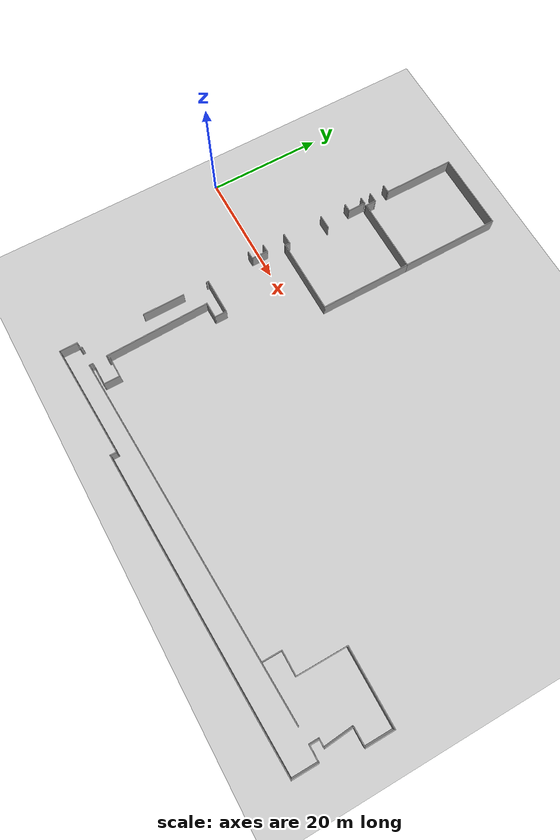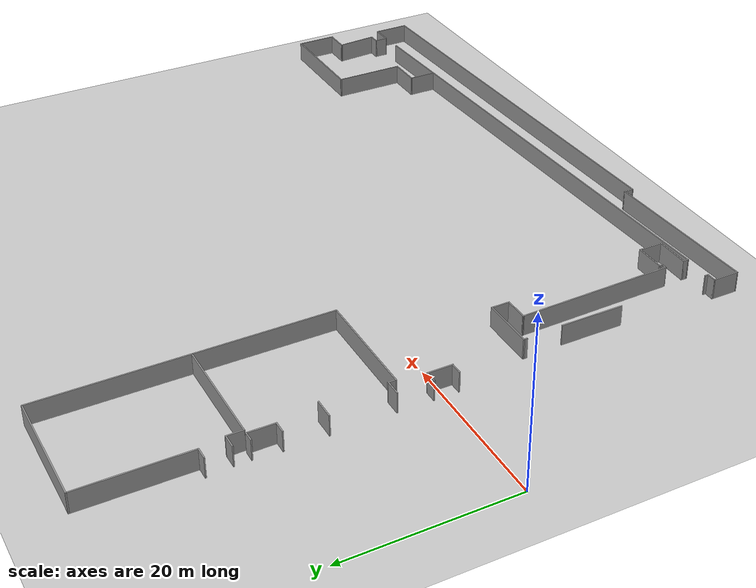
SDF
<sdf version="1.7">
 <world name="default">
  <model name="ground_plane">
   <static>1</static>
   <link name="link">
    <collision name="collision">
     <geometry><plane><normal>0 0 1</normal><size>100 100</size></plane></geometry>
     <surface>
      <contact><collide_bitmask>65535</collide_bitmask></contact>
      <friction><ode><mu>100</mu><mu2>50</mu2></ode></friction>
     </surface>
    </collision>
    <visual name="visual">
     <cast_shadows>0</cast_shadows>
     <geometry><plane><normal>0 0 1</normal><size>100 100</size></plane></geometry>
     <material>
      <script><uri>file://media/materials/scripts/gazebo.material</uri><name>Gazebo/Grey</name></script>
     </material>
    </visual>
   </link>
  </model>
  <model name="Lab">
   <pose>43.6591 0.026965 -0.000316 0 -1.4e-05 -1.57</pose>
   <link name="Wall_113">
    <collision name="Wall_113_Collision">
     <geometry><box><size>0.5 0.15 2.5</size></box></geometry>
     <pose>0 0 1.25 0 -0 0</pose>
    </collision>
    <visual name="Wall_113_Visual">
     <pose>0 0 1.25 0 -0 0</pose>
     <geometry><box><size>0.5 0.15 2.5</size></box></geometry>
     <material>
      <script><uri>file://media/materials/scripts/gazebo.material</uri><name>Gazebo/Grey</name></script>
      <ambient>1 1 1 1</ambient>
     </material>
     <meta><layer>0</layer></meta>
    </visual>
    <pose>33.9062 -25.9051 0 0 -0 0</pose>
    <inertial>
     <inertia><ixx>1</ixx><ixy>0</ixy><ixz>0</ixz><iyy>1</iyy><iyz>0</iyz><izz>1</izz></inertia>
     <mass>1</mass>
    </inertial>
   </link>
   <link name="Wall_114">
    <collision name="Wall_114_Collision">
     <geometry><box><size>1.25 0.15 2.5</size></box></geometry>
     <pose>0 0 1.25 0 -0 0</pose>
    </collision>
    <visual name="Wall_114_Visual">
     <pose>0 0 1.25 0 -0 0</pose>
     <geometry><box><size>1.25 0.15 2.5</size></box></geometry>
     <material>
      <script><uri>file://media/materials/scripts/gazebo.material</uri><name>Gazebo/Grey</name></script>
      <ambient>1 1 1 1</ambient>
     </material>
     <meta><layer>0</layer></meta>
    </visual>
    <pose>34.0812 -26.4551 0 0 -0 -1.5708</pose>
    <inertial>
     <inertia><ixx>1</ixx><ixy>0</ixy><ixz>0</ixz><iyy>1</iyy><iyz>0</iyz><izz>1</izz></inertia>
     <mass>1</mass>
    </inertial>
   </link>
   <link name="Wall_115">
    <collision name="Wall_115_Collision">
     <geometry><box><size>3.25 0.15 2.5</size></box></geometry>
     <pose>0 0 1.25 0 -0 0</pose>
    </collision>
    <visual name="Wall_115_Visual">
     <pose>0 0 1.25 0 -0 0</pose>
     <geometry><box><size>3.25 0.15 2.5</size></box></geometry>
     <material>
      <script><uri>file://media/materials/scripts/gazebo.material</uri><name>Gazebo/Grey</name></script>
      <ambient>1 1 1 1</ambient>
     </material>
     <meta><layer>0</layer></meta>
    </visual>
    <pose>35.6312 -27.0051 0 0 -0 0</pose>
    <inertial>
     <inertia><ixx>1</ixx><ixy>0</ixy><ixz>0</ixz><iyy>1</iyy><iyz>0</iyz><izz>1</izz></inertia>
     <mass>1</mass>
    </inertial>
   </link>
   <link name="Wall_117">
    <collision name="Wall_117_Collision">
     <geometry><box><size>3 0.15 2.5</size></box></geometry>
     <pose>0 0 1.25 0 -0 0</pose>
    </collision>
    <visual name="Wall_117_Visual">
     <pose>0 0 1.25 0 -0 0</pose>
     <geometry><box><size>3 0.15 2.5</size></box></geometry>
     <material>
      <script><uri>file://media/materials/scripts/gazebo.material</uri><name>Gazebo/Grey</name></script>
      <ambient>1 1 1 1</ambient>
     </material>
     <meta><layer>0</layer></meta>
    </visual>
    <pose>31.9611 -18.3743 0 0 -0 0</pose>
    <inertial>
     <inertia><ixx>1</ixx><ixy>0</ixy><ixz>0</ixz><iyy>1</iyy><iyz>0</iyz><izz>1</izz></inertia>
     <mass>1</mass>
    </inertial>
   </link>
   <link name="Wall_118">
    <collision name="Wall_118_Collision">
     <geometry><box><size>4.25 0.15 2.5</size></box></geometry>
     <pose>0 0 1.25 0 -0 0</pose>
    </collision>
    <visual name="Wall_118_Visual">
     <pose>0 0 1.25 0 -0 0</pose>
     <geometry><box><size>4.25 0.15 2.5</size></box></geometry>
     <material>
      <script><uri>file://media/materials/scripts/gazebo.material</uri><name>Gazebo/Grey</name></script>
      <ambient>1 1 1 1</ambient>
     </material>
     <meta><layer>0</layer></meta>
    </visual>
    <pose>33.3861 -20.4243 0 0 -0 -1.5708</pose>
    <inertial>
     <inertia><ixx>1</ixx><ixy>0</ixy><ixz>0</ixz><iyy>1</iyy><iyz>0</iyz><izz>1</izz></inertia>
     <mass>1</mass>
    </inertial>
   </link>
   <link name="Wall_119">
    <collision name="Wall_119_Collision">
     <geometry><box><size>0.75 0.15 2.5</size></box></geometry>
     <pose>0 0 1.25 0 -0 0</pose>
    </collision>
    <visual name="Wall_119_Visual">
     <pose>0 0 1.25 0 -0 0</pose>
     <geometry><box><size>0.75 0.15 2.5</size></box></geometry>
     <material>
      <script><uri>file://media/materials/scripts/gazebo.material</uri><name>Gazebo/Grey</name></script>
      <ambient>1 1 1 1</ambient>
     </material>
     <meta><layer>0</layer></meta>
    </visual>
    <pose>33.6861 -22.4743 0 0 -0 0</pose>
    <inertial>
     <inertia><ixx>1</ixx><ixy>0</ixy><ixz>0</ixz><iyy>1</iyy><iyz>0</iyz><izz>1</izz></inertia>
     <mass>1</mass>
    </inertial>
   </link>
   <link name="Wall_121">
    <collision name="Wall_121_Collision">
     <geometry><box><size>20.026 0.15 2.5</size></box></geometry>
     <pose>0 0 1.25 0 -0 0</pose>
    </collision>
    <visual name="Wall_121_Visual">
     <pose>0 0 1.25 0 -0 0</pose>
     <geometry><box><size>20.026 0.15 2.5</size></box></geometry>
     <material>
      <script><uri>file://media/materials/scripts/gazebo.material</uri><name>Gazebo/Grey</name></script>
      <ambient>1 1 1 1</ambient>
     </material>
     <meta><layer>0</layer></meta>
    </visual>
    <pose>36.7959 -17.0746 0 0 -0 1.60957</pose>
    <inertial>
     <inertia><ixx>1</ixx><ixy>0</ixy><ixz>0</ixz><iyy>1</iyy><iyz>0</iyz><izz>1</izz></inertia>
     <mass>1</mass>
    </inertial>
   </link>
   <link name="Wall_123">
    <collision name="Wall_123_Collision">
     <geometry><box><size>1.25 0.15 2.5</size></box></geometry>
     <pose>0 0 1.25 0 -0 0</pose>
    </collision>
    <visual name="Wall_123_Visual">
     <pose>0 0 1.25 0 -0 0</pose>
     <geometry><box><size>1.25 0.15 2.5</size></box></geometry>
     <material>
      <script><uri>file://media/materials/scripts/gazebo.material</uri><name>Gazebo/Grey</name></script>
      <ambient>1 1 1 1</ambient>
     </material>
     <meta><layer>0</layer></meta>
    </visual>
    <pose>36.9607 -7.14408 0 0 -0 0</pose>
    <inertial>
     <inertia><ixx>1</ixx><ixy>0</ixy><ixz>0</ixz><iyy>1</iyy><iyz>0</iyz><izz>1</izz></inertia>
     <mass>1</mass>
    </inertial>
   </link>
   <link name="Wall_125">
    <collision name="Wall_125_Collision">
     <geometry><box><size>63.8964 0.15 2.5</size></box></geometry>
     <pose>0 0 1.25 0 -0 0</pose>
    </collision>
    <visual name="Wall_125_Visual">
     <pose>0 0 1.25 0 -0 0</pose>
     <geometry><box><size>63.8964 0.15 2.5</size></box></geometry>
     <material>
      <script><uri>file://media/materials/scripts/gazebo.material</uri><name>Gazebo/Grey</name></script>
      <ambient>1 1 1 1</ambient>
     </material>
     <meta><layer>0</layer></meta>
    </visual>
    <pose>32.6938 9.3727 0 0 -0 1.61135</pose>
    <inertial>
     <inertia><ixx>1</ixx><ixy>0</ixy><ixz>0</ixz><iyy>1</iyy><iyz>0</iyz><izz>1</izz></inertia>
     <mass>1</mass>
    </inertial>
   </link>
   <link name="Wall_127">
    <collision name="Wall_127_Collision">
     <geometry><box><size>3.5 0.15 2.5</size></box></geometry>
     <pose>0 0 1.25 0 -0 0</pose>
    </collision>
    <visual name="Wall_127_Visual">
     <pose>0 0 1.25 0 -0 0</pose>
     <geometry><box><size>3.5 0.15 2.5</size></box></geometry>
     <material>
      <script><uri>file://media/materials/scripts/gazebo.material</uri><name>Gazebo/Grey</name></script>
      <ambient>1 1 1 1</ambient>
     </material>
     <meta><layer>0</layer></meta>
    </visual>
    <pose>30.0989 31.1914 0 0 -0 3.14159</pose>
    <inertial>
     <inertia><ixx>1</ixx><ixy>0</ixy><ixz>0</ixz><iyy>1</iyy><iyz>0</iyz><izz>1</izz></inertia>
     <mass>1</mass>
    </inertial>
   </link>
   <link name="Wall_128">
    <collision name="Wall_128_Collision">
     <geometry><box><size>4.25 0.15 2.5</size></box></geometry>
     <pose>0 0 1.25 0 -0 0</pose>
    </collision>
    <visual name="Wall_128_Visual">
     <pose>0 0 1.25 0 -0 0</pose>
     <geometry><box><size>4.25 0.15 2.5</size></box></geometry>
     <material>
      <script><uri>file://media/materials/scripts/gazebo.material</uri><name>Gazebo/Grey</name></script>
      <ambient>1 1 1 1</ambient>
     </material>
     <meta><layer>0</layer></meta>
    </visual>
    <pose>28.4239 33.2414 0 0 -0 1.5708</pose>
    <inertial>
     <inertia><ixx>1</ixx><ixy>0</ixy><ixz>0</ixz><iyy>1</iyy><iyz>0</iyz><izz>1</izz></inertia>
     <mass>1</mass>
    </inertial>
   </link>
   <link name="Wall_129">
    <collision name="Wall_129_Collision">
     <geometry><box><size>8.75 0.15 2.5</size></box></geometry>
     <pose>0 0 1.25 0 -0 0</pose>
    </collision>
    <visual name="Wall_129_Visual">
     <pose>0 0 1.25 0 -0 0</pose>
     <geometry><box><size>8.75 0.15 2.5</size></box></geometry>
     <material>
      <script><uri>file://media/materials/scripts/gazebo.material</uri><name>Gazebo/Grey</name></script>
      <ambient>1 1 1 1</ambient>
     </material>
     <meta><layer>0</layer></meta>
    </visual>
    <pose>24.1239 35.2914 0 0 -0 3.14159</pose>
    <inertial>
     <inertia><ixx>1</ixx><ixy>0</ixy><ixz>0</ixz><iyy>1</iyy><iyz>0</iyz><izz>1</izz></inertia>
     <mass>1</mass>
    </inertial>
   </link>
   <link name="Wall_131">
    <collision name="Wall_131_Collision">
     <geometry><box><size>13 0.15 2.5</size></box></geometry>
     <pose>0 0 1.25 0 -0 0</pose>
    </collision>
    <visual name="Wall_131_Visual">
     <pose>0 0 1.25 0 -0 0</pose>
     <geometry><box><size>13 0.15 2.5</size></box></geometry>
     <material>
      <script><uri>file://media/materials/scripts/gazebo.material</uri><name>Gazebo/Grey</name></script>
      <ambient>1 1 1 1</ambient>
     </material>
     <meta><layer>0</layer></meta>
    </visual>
    <pose>19.8239 41.7164 0 0 -0 1.5708</pose>
    <inertial>
     <inertia><ixx>1</ixx><ixy>0</ixy><ixz>0</ixz><iyy>1</iyy><iyz>0</iyz><izz>1</izz></inertia>
     <mass>1</mass>
    </inertial>
   </link>
   <link name="Wall_132">
    <collision name="Wall_132_Collision">
     <geometry><box><size>5 0.15 2.5</size></box></geometry>
     <pose>0 0 1.25 0 -0 0</pose>
    </collision>
    <visual name="Wall_132_Visual">
     <pose>0 0 1.25 0 -0 0</pose>
     <geometry><box><size>5 0.15 2.5</size></box></geometry>
     <material>
      <script><uri>file://media/materials/scripts/gazebo.material</uri><name>Gazebo/Grey</name></script>
      <ambient>1 1 1 1</ambient>
     </material>
     <meta><layer>0</layer></meta>
    </visual>
    <pose>22.2489 48.1414 0 0 -0 0</pose>
    <inertial>
     <inertia><ixx>1</ixx><ixy>0</ixy><ixz>0</ixz><iyy>1</iyy><iyz>0</iyz><izz>1</izz></inertia>
     <mass>1</mass>
    </inertial>
   </link>
   <link name="Wall_133">
    <collision name="Wall_133_Collision">
     <geometry><box><size>3.25 0.15 2.5</size></box></geometry>
     <pose>0 0 1.25 0 -0 0</pose>
    </collision>
    <visual name="Wall_133_Visual">
     <pose>0 0 1.25 0 -0 0</pose>
     <geometry><box><size>3.25 0.15 2.5</size></box></geometry>
     <material>
      <script><uri>file://media/materials/scripts/gazebo.material</uri><name>Gazebo/Grey</name></script>
      <ambient>1 1 1 1</ambient>
     </material>
     <meta><layer>0</layer></meta>
    </visual>
    <pose>24.6739 46.5914 0 0 -0 -1.5708</pose>
    <inertial>
     <inertia><ixx>1</ixx><ixy>0</ixy><ixz>0</ixz><iyy>1</iyy><iyz>0</iyz><izz>1</izz></inertia>
     <mass>1</mass>
    </inertial>
   </link>
   <link name="Wall_134">
    <collision name="Wall_134_Collision">
     <geometry><box><size>5.13657 0.15 2.5</size></box></geometry>
     <pose>0 0 1.25 0 -0 0</pose>
    </collision>
    <visual name="Wall_134_Visual">
     <pose>0 0 1.25 0 -0 0</pose>
     <geometry><box><size>5.13657 0.15 2.5</size></box></geometry>
     <material>
      <script><uri>file://media/materials/scripts/gazebo.material</uri><name>Gazebo/Grey</name></script>
      <ambient>1 1 1 1</ambient>
     </material>
     <meta><layer>0</layer></meta>
    </visual>
    <pose>27.1599 45.232 0 0 -0 0.076501</pose>
    <inertial>
     <inertia><ixx>1</ixx><ixy>0</ixy><ixz>0</ixz><iyy>1</iyy><iyz>0</iyz><izz>1</izz></inertia>
     <mass>1</mass>
    </inertial>
   </link>
   <link name="Wall_135">
    <collision name="Wall_135_Collision">
     <geometry><box><size>1.5 0.15 2.5</size></box></geometry>
     <pose>0 0 1.25 0 -0 0</pose>
    </collision>
    <visual name="Wall_135_Visual">
     <pose>0 0 1.25 0 -0 0</pose>
     <geometry><box><size>1.5 0.15 2.5</size></box></geometry>
     <material>
      <script><uri>file://media/materials/scripts/gazebo.material</uri><name>Gazebo/Grey</name></script>
      <ambient>1 1 1 1</ambient>
     </material>
     <meta><layer>0</layer></meta>
    </visual>
    <pose>29.6458 44.7475 0 0 -0 -1.5708</pose>
    <inertial>
     <inertia><ixx>1</ixx><ixy>0</ixy><ixz>0</ixz><iyy>1</iyy><iyz>0</iyz><izz>1</izz></inertia>
     <mass>1</mass>
    </inertial>
   </link>
   <link name="Wall_136">
    <collision name="Wall_136_Collision">
     <geometry><box><size>1.75 0.15 2.5</size></box></geometry>
     <pose>0 0 1.25 0 -0 0</pose>
    </collision>
    <visual name="Wall_136_Visual">
     <pose>0 0 1.25 0 -0 0</pose>
     <geometry><box><size>1.75 0.15 2.5</size></box></geometry>
     <material>
      <script><uri>file://media/materials/scripts/gazebo.material</uri><name>Gazebo/Grey</name></script>
      <ambient>1 1 1 1</ambient>
     </material>
     <meta><layer>0</layer></meta>
    </visual>
    <pose>30.4458 44.0725 0 0 -0 0</pose>
    <inertial>
     <inertia><ixx>1</ixx><ixy>0</ixy><ixz>0</ixz><iyy>1</iyy><iyz>0</iyz><izz>1</izz></inertia>
     <mass>1</mass>
    </inertial>
   </link>
   <link name="Wall_137">
    <collision name="Wall_137_Collision">
     <geometry><box><size>2.75 0.15 2.5</size></box></geometry>
     <pose>0 0 1.25 0 -0 0</pose>
    </collision>
    <visual name="Wall_137_Visual">
     <pose>0 0 1.25 0 -0 0</pose>
     <geometry><box><size>2.75 0.15 2.5</size></box></geometry>
     <material>
      <script><uri>file://media/materials/scripts/gazebo.material</uri><name>Gazebo/Grey</name></script>
      <ambient>1 1 1 1</ambient>
     </material>
     <meta><layer>0</layer></meta>
    </visual>
    <pose>31.2458 45.3725 0 0 -0 1.5708</pose>
    <inertial>
     <inertia><ixx>1</ixx><ixy>0</ixy><ixz>0</ixz><iyy>1</iyy><iyz>0</iyz><izz>1</izz></inertia>
     <mass>1</mass>
    </inertial>
   </link>
   <link name="Wall_138">
    <collision name="Wall_138_Collision">
     <geometry><box><size>4.5 0.15 2.5</size></box></geometry>
     <pose>0 0 1.25 0 -0 0</pose>
    </collision>
    <visual name="Wall_138_Visual">
     <pose>0 0 1.25 0 -0 0</pose>
     <geometry><box><size>4.5 0.15 2.5</size></box></geometry>
     <material>
      <script><uri>file://media/materials/scripts/gazebo.material</uri><name>Gazebo/Grey</name></script>
      <ambient>1 1 1 1</ambient>
     </material>
     <meta><layer>0</layer></meta>
    </visual>
    <pose>33.4208 46.6725 0 0 -0 0</pose>
    <inertial>
     <inertia><ixx>1</ixx><ixy>0</ixy><ixz>0</ixz><iyy>1</iyy><iyz>0</iyz><izz>1</izz></inertia>
     <mass>1</mass>
    </inertial>
   </link>
   <link name="Wall_140">
    <collision name="Wall_140_Collision">
     <geometry><box><size>53.9783 0.15 2.5</size></box></geometry>
     <pose>0 0 1.25 0 -0 0</pose>
    </collision>
    <visual name="Wall_140_Visual">
     <pose>0 0 1.25 0 -0 0</pose>
     <geometry><box><size>53.9783 0.15 2.5</size></box></geometry>
     <material>
      <script><uri>file://media/materials/scripts/gazebo.material</uri><name>Gazebo/Grey</name></script>
      <ambient>1 1 1 1</ambient>
     </material>
     <meta><layer>0</layer></meta>
    </visual>
    <pose>36.5596 19.7533 0 0 -0 1.60614</pose>
    <inertial>
     <inertia><ixx>1</ixx><ixy>0</ixy><ixz>0</ixz><iyy>1</iyy><iyz>0</iyz><izz>1</izz></inertia>
     <mass>1</mass>
    </inertial>
   </link>
   <link name="Wall_26">
    <collision name="Wall_26_Collision">
     <geometry><box><size>1.5 0.15 2.5</size></box></geometry>
     <pose>0 0 1.25 0 -0 0</pose>
    </collision>
    <visual name="Wall_26_Visual">
     <pose>0 0 1.25 0 -0 0</pose>
     <geometry><box><size>1.5 0.15 2.5</size></box></geometry>
     <material>
      <script><uri>file://media/materials/scripts/gazebo.material</uri><name>Gazebo/Grey</name></script>
      <ambient>1 1 1 1</ambient>
     </material>
     <meta><layer>0</layer></meta>
    </visual>
    <pose>-25.2163 -27.4164 0 0 -0 1.5708</pose>
    <inertial>
     <inertia><ixx>1</ixx><ixy>0</ixy><ixz>0</ixz><iyy>1</iyy><iyz>0</iyz><izz>1</izz></inertia>
     <mass>1</mass>
    </inertial>
   </link>
   <link name="Wall_28">
    <collision name="Wall_28_Collision">
     <geometry><box><size>12.75 0.15 2.5</size></box></geometry>
     <pose>0 0 1.25 0 -0 0</pose>
    </collision>
    <visual name="Wall_28_Visual">
     <pose>0 0 1.25 0 -0 0</pose>
     <geometry><box><size>12.75 0.15 2.5</size></box></geometry>
     <material>
      <script><uri>file://media/materials/scripts/gazebo.material</uri><name>Gazebo/Grey</name></script>
      <ambient>1 1 1 1</ambient>
     </material>
     <meta><layer>0</layer></meta>
    </visual>
    <pose>-31.5163 -26.7414 0 0 -0 3.14159</pose>
    <inertial>
     <inertia><ixx>1</ixx><ixy>0</ixy><ixz>0</ixz><iyy>1</iyy><iyz>0</iyz><izz>1</izz></inertia>
     <mass>1</mass>
    </inertial>
   </link>
   <link name="Wall_30">
    <collision name="Wall_30_Collision">
     <geometry><box><size>14 0.15 2.5</size></box></geometry>
     <pose>0 0 1.25 0 -0 0</pose>
    </collision>
    <visual name="Wall_30_Visual">
     <pose>0 0 1.25 0 -0 0</pose>
     <geometry><box><size>14 0.15 2.5</size></box></geometry>
     <material>
      <script><uri>file://media/materials/scripts/gazebo.material</uri><name>Gazebo/Grey</name></script>
      <ambient>1 1 1 1</ambient>
     </material>
     <meta><layer>0</layer></meta>
    </visual>
    <pose>-37.8163 -19.8164 0 0 -0 1.5708</pose>
    <inertial>
     <inertia><ixx>1</ixx><ixy>0</ixy><ixz>0</ixz><iyy>1</iyy><iyz>0</iyz><izz>1</izz></inertia>
     <mass>1</mass>
    </inertial>
   </link>
   <link name="Wall_31">
    <collision name="Wall_31_Collision">
     <geometry><box><size>17.5 0.15 2.5</size></box></geometry>
     <pose>0 0 1.25 0 -0 0</pose>
    </collision>
    <visual name="Wall_31_Visual">
     <pose>0 0 1.25 0 -0 0</pose>
     <geometry><box><size>17.5 0.15 2.5</size></box></geometry>
     <material>
      <script><uri>file://media/materials/scripts/gazebo.material</uri><name>Gazebo/Grey</name></script>
      <ambient>1 1 1 1</ambient>
     </material>
     <meta><layer>0</layer></meta>
    </visual>
    <pose>-29.1413 -12.8914 0 0 -0 0</pose>
    <inertial>
     <inertia><ixx>1</ixx><ixy>0</ixy><ixz>0</ixz><iyy>1</iyy><iyz>0</iyz><izz>1</izz></inertia>
     <mass>1</mass>
    </inertial>
   </link>
   <link name="Wall_32">
    <collision name="Wall_32_Collision">
     <geometry><box><size>13.5 0.15 2.5</size></box></geometry>
     <pose>0 0 1.25 0 -0 0</pose>
    </collision>
    <visual name="Wall_32_Visual">
     <pose>0 0 1.25 0 -0 0</pose>
     <geometry><box><size>13.5 0.15 2.5</size></box></geometry>
     <material>
      <script><uri>file://media/materials/scripts/gazebo.material</uri><name>Gazebo/Grey</name></script>
      <ambient>1 1 1 1</ambient>
     </material>
     <meta><layer>0</layer></meta>
    </visual>
    <pose>-20.4663 -19.5664 0 0 -0 -1.5708</pose>
    <inertial>
     <inertia><ixx>1</ixx><ixy>0</ixy><ixz>0</ixz><iyy>1</iyy><iyz>0</iyz><izz>1</izz></inertia>
     <mass>1</mass>
    </inertial>
   </link>
   <link name="Wall_33">
    <collision name="Wall_33_Collision">
     <geometry><box><size>2 0.15 2.5</size></box></geometry>
     <pose>0 0 1.25 0 -0 0</pose>
    </collision>
    <visual name="Wall_33_Visual">
     <pose>0 0 1.25 0 -0 0</pose>
     <geometry><box><size>2 0.15 2.5</size></box></geometry>
     <material>
      <script><uri>file://media/materials/scripts/gazebo.material</uri><name>Gazebo/Grey</name></script>
      <ambient>1 1 1 1</ambient>
     </material>
     <meta><layer>0</layer></meta>
    </visual>
    <pose>-21.3913 -26.2414 0 0 -0 3.14159</pose>
    <inertial>
     <inertia><ixx>1</ixx><ixy>0</ixy><ixz>0</ixz><iyy>1</iyy><iyz>0</iyz><izz>1</izz></inertia>
     <mass>1</mass>
    </inertial>
   </link>
   <link name="Wall_34">
    <collision name="Wall_34_Collision">
     <geometry><box><size>1.75 0.15 2.5</size></box></geometry>
     <pose>0 0 1.25 0 -0 0</pose>
    </collision>
    <visual name="Wall_34_Visual">
     <pose>0 0 1.25 0 -0 0</pose>
     <geometry><box><size>1.75 0.15 2.5</size></box></geometry>
     <material>
      <script><uri>file://media/materials/scripts/gazebo.material</uri><name>Gazebo/Grey</name></script>
      <ambient>1 1 1 1</ambient>
     </material>
     <meta><layer>0</layer></meta>
    </visual>
    <pose>-22.3163 -27.0414 0 0 -0 -1.5708</pose>
    <inertial>
     <inertia><ixx>1</ixx><ixy>0</ixy><ixz>0</ixz><iyy>1</iyy><iyz>0</iyz><izz>1</izz></inertia>
     <mass>1</mass>
    </inertial>
   </link>
   <link name="Wall_36">
    <collision name="Wall_36_Collision">
     <geometry><box><size>1.25 0.15 2.5</size></box></geometry>
     <pose>0 0 1.25 0 -0 0</pose>
    </collision>
    <visual name="Wall_36_Visual">
     <pose>0 0 1.25 0 -0 0</pose>
     <geometry><box><size>1.25 0.15 2.5</size></box></geometry>
     <material>
      <script><uri>file://media/materials/scripts/gazebo.material</uri><name>Gazebo/Grey</name></script>
      <ambient>1 1 1 1</ambient>
     </material>
     <meta><layer>0</layer></meta>
    </visual>
    <pose>-20.4663 -27.2914 0 0 -0 1.5708</pose>
    <inertial>
     <inertia><ixx>1</ixx><ixy>0</ixy><ixz>0</ixz><iyy>1</iyy><iyz>0</iyz><izz>1</izz></inertia>
     <mass>1</mass>
    </inertial>
   </link>
   <link name="Wall_37">
    <collision name="Wall_37_Collision">
     <geometry><box><size>3.25 0.15 2.5</size></box></geometry>
     <pose>0 0 1.25 0 -0 0</pose>
    </collision>
    <visual name="Wall_37_Visual">
     <pose>0 0 1.25 0 -0 0</pose>
     <geometry><box><size>3.25 0.15 2.5</size></box></geometry>
     <material>
      <script><uri>file://media/materials/scripts/gazebo.material</uri><name>Gazebo/Grey</name></script>
      <ambient>1 1 1 1</ambient>
     </material>
     <meta><layer>0</layer></meta>
    </visual>
    <pose>-18.9163 -26.7414 0 0 -0 0</pose>
    <inertial>
     <inertia><ixx>1</ixx><ixy>0</ixy><ixz>0</ixz><iyy>1</iyy><iyz>0</iyz><izz>1</izz></inertia>
     <mass>1</mass>
    </inertial>
   </link>
   <link name="Wall_38">
    <collision name="Wall_38_Collision">
     <geometry><box><size>1.5 0.15 2.5</size></box></geometry>
     <pose>0 0 1.25 0 -0 0</pose>
    </collision>
    <visual name="Wall_38_Visual">
     <pose>0 0 1.25 0 -0 0</pose>
     <geometry><box><size>1.5 0.15 2.5</size></box></geometry>
     <material>
      <script><uri>file://media/materials/scripts/gazebo.material</uri><name>Gazebo/Grey</name></script>
      <ambient>1 1 1 1</ambient>
     </material>
     <meta><layer>0</layer></meta>
    </visual>
    <pose>-17.3663 -27.4164 0 0 -0 -1.5708</pose>
    <inertial>
     <inertia><ixx>1</ixx><ixy>0</ixy><ixz>0</ixz><iyy>1</iyy><iyz>0</iyz><izz>1</izz></inertia>
     <mass>1</mass>
    </inertial>
   </link>
   <link name="Wall_41">
    <collision name="Wall_41_Collision">
     <geometry><box><size>2.5 0.15 2.5</size></box></geometry>
     <pose>0 0 1.25 0 -0 0</pose>
    </collision>
    <visual name="Wall_41_Visual">
     <pose>0 0 1.25 0 -0 0</pose>
     <geometry><box><size>2.5 0.15 2.5</size></box></geometry>
     <material>
      <script><uri>file://media/materials/scripts/gazebo.material</uri><name>Gazebo/Grey</name></script>
      <ambient>1 1 1 1</ambient>
     </material>
     <meta><layer>0</layer></meta>
    </visual>
    <pose>-12.5163 -26.9164 0 0 -0 1.5708</pose>
    <inertial>
     <inertia><ixx>1</ixx><ixy>0</ixy><ixz>0</ixz><iyy>1</iyy><iyz>0</iyz><izz>1</izz></inertia>
     <mass>1</mass>
    </inertial>
   </link>
   <link name="Wall_65">
    <collision name="Wall_65_Collision">
     <geometry><box><size>16.25 0.15 2.5</size></box></geometry>
     <pose>0 0 1.25 0 -0 0</pose>
    </collision>
    <visual name="Wall_65_Visual">
     <pose>0 0 1.25 0 -0 0</pose>
     <geometry><box><size>16.25 0.15 2.5</size></box></geometry>
     <material>
      <script><uri>file://media/materials/scripts/gazebo.material</uri><name>Gazebo/Grey</name></script>
      <ambient>1 1 1 1</ambient>
     </material>
     <meta><layer>0</layer></meta>
    </visual>
    <pose>-12.4163 -12.8914 0 0 -0 0</pose>
    <inertial>
     <inertia><ixx>1</ixx><ixy>0</ixy><ixz>0</ixz><iyy>1</iyy><iyz>0</iyz><izz>1</izz></inertia>
     <mass>1</mass>
    </inertial>
   </link>
   <link name="Wall_66">
    <collision name="Wall_66_Collision">
     <geometry><box><size>13.5 0.15 2.5</size></box></geometry>
     <pose>0 0 1.25 0 -0 0</pose>
    </collision>
    <visual name="Wall_66_Visual">
     <pose>0 0 1.25 0 -0 0</pose>
     <geometry><box><size>13.5 0.15 2.5</size></box></geometry>
     <material>
      <script><uri>file://media/materials/scripts/gazebo.material</uri><name>Gazebo/Grey</name></script>
      <ambient>1 1 1 1</ambient>
     </material>
     <meta><layer>0</layer></meta>
    </visual>
    <pose>-4.36626 -19.5664 0 0 -0 -1.5708</pose>
    <inertial>
     <inertia><ixx>1</ixx><ixy>0</ixy><ixz>0</ixz><iyy>1</iyy><iyz>0</iyz><izz>1</izz></inertia>
     <mass>1</mass>
    </inertial>
   </link>
   <link name="Wall_67">
    <collision name="Wall_67_Collision">
     <geometry><box><size>1 0.15 2.5</size></box></geometry>
     <pose>0 0 1.25 0 -0 0</pose>
    </collision>
    <visual name="Wall_67_Visual">
     <pose>0 0 1.25 0 -0 0</pose>
     <geometry><box><size>1 0.15 2.5</size></box></geometry>
     <material>
      <script><uri>file://media/materials/scripts/gazebo.material</uri><name>Gazebo/Grey</name></script>
      <ambient>1 1 1 1</ambient>
     </material>
     <meta><layer>0</layer></meta>
    </visual>
    <pose>-4.79126 -26.2414 0 0 -0 3.14159</pose>
    <inertial>
     <inertia><ixx>1</ixx><ixy>0</ixy><ixz>0</ixz><iyy>1</iyy><iyz>0</iyz><izz>1</izz></inertia>
     <mass>1</mass>
    </inertial>
   </link>
   <link name="Wall_68">
    <collision name="Wall_68_Collision">
     <geometry><box><size>2 0.15 2.5</size></box></geometry>
     <pose>0 0 1.25 0 -0 0</pose>
    </collision>
    <visual name="Wall_68_Visual">
     <pose>0 0 1.25 0 -0 0</pose>
     <geometry><box><size>2 0.15 2.5</size></box></geometry>
     <material>
      <script><uri>file://media/materials/scripts/gazebo.material</uri><name>Gazebo/Grey</name></script>
      <ambient>1 1 1 1</ambient>
     </material>
     <meta><layer>0</layer></meta>
    </visual>
    <pose>-5.21626 -27.1664 0 0 -0 -1.5708</pose>
    <inertial>
     <inertia><ixx>1</ixx><ixy>0</ixy><ixz>0</ixz><iyy>1</iyy><iyz>0</iyz><izz>1</izz></inertia>
     <mass>1</mass>
    </inertial>
   </link>
   <link name="Wall_70">
    <collision name="Wall_70_Collision">
     <geometry><box><size>1.5 0.15 2.5</size></box></geometry>
     <pose>0 0 1.25 0 -0 0</pose>
    </collision>
    <visual name="Wall_70_Visual">
     <pose>0 0 1.25 0 -0 0</pose>
     <geometry><box><size>1.5 0.15 2.5</size></box></geometry>
     <material>
      <script><uri>file://media/materials/scripts/gazebo.material</uri><name>Gazebo/Grey</name></script>
      <ambient>1 1 1 1</ambient>
     </material>
     <meta><layer>0</layer></meta>
    </visual>
    <pose>-1.11626 -27.4164 0 0 -0 1.5708</pose>
    <inertial>
     <inertia><ixx>1</ixx><ixy>0</ixy><ixz>0</ixz><iyy>1</iyy><iyz>0</iyz><izz>1</izz></inertia>
     <mass>1</mass>
    </inertial>
   </link>
   <link name="Wall_71">
    <collision name="Wall_71_Collision">
     <geometry><box><size>3 0.15 2.5</size></box></geometry>
     <pose>0 0 1.25 0 -0 0</pose>
    </collision>
    <visual name="Wall_71_Visual">
     <pose>0 0 1.25 0 -0 0</pose>
     <geometry><box><size>3 0.15 2.5</size></box></geometry>
     <material>
      <script><uri>file://media/materials/scripts/gazebo.material</uri><name>Gazebo/Grey</name></script>
      <ambient>1 1 1 1</ambient>
     </material>
     <meta><layer>0</layer></meta>
    </visual>
    <pose>0.308737 -26.7414 0 0 -0 0</pose>
    <inertial>
     <inertia><ixx>1</ixx><ixy>0</ixy><ixz>0</ixz><iyy>1</iyy><iyz>0</iyz><izz>1</izz></inertia>
     <mass>1</mass>
    </inertial>
   </link>
   <link name="Wall_72">
    <collision name="Wall_72_Collision">
     <geometry><box><size>1.5 0.15 2.5</size></box></geometry>
     <pose>0 0 1.25 0 -0 0</pose>
    </collision>
    <visual name="Wall_72_Visual">
     <pose>0 0 1.25 0 -0 0</pose>
     <geometry><box><size>1.5 0.15 2.5</size></box></geometry>
     <material>
      <script><uri>file://media/materials/scripts/gazebo.material</uri><name>Gazebo/Grey</name></script>
      <ambient>1 1 1 1</ambient>
     </material>
     <meta><layer>0</layer></meta>
    </visual>
    <pose>1.73374 -27.4164 0 0 -0 -1.5708</pose>
    <inertial>
     <inertia><ixx>1</ixx><ixy>0</ixy><ixz>0</ixz><iyy>1</iyy><iyz>0</iyz><izz>1</izz></inertia>
     <mass>1</mass>
    </inertial>
   </link>
   <link name="Wall_86">
    <collision name="Wall_86_Collision">
     <geometry><box><size>0.5 0.15 2.5</size></box></geometry>
     <pose>0 0 1.25 0 -0 0</pose>
    </collision>
    <visual name="Wall_86_Visual">
     <pose>0 0 1.25 0 -0 0</pose>
     <geometry><box><size>0.5 0.15 2.5</size></box></geometry>
     <material>
      <script><uri>file://media/materials/scripts/gazebo.material</uri><name>Gazebo/Grey</name></script>
      <ambient>1 1 1 1</ambient>
     </material>
     <meta><layer>0</layer></meta>
    </visual>
    <pose>10.4079 -26.5003 0 0 -0 3.14159</pose>
    <inertial>
     <inertia><ixx>1</ixx><ixy>0</ixy><ixz>0</ixz><iyy>1</iyy><iyz>0</iyz><izz>1</izz></inertia>
     <mass>1</mass>
    </inertial>
   </link>
   <link name="Wall_88">
    <collision name="Wall_88_Collision">
     <geometry><box><size>6.5 0.15 2.5</size></box></geometry>
     <pose>0 0 1.25 0 -0 0</pose>
    </collision>
    <visual name="Wall_88_Visual">
     <pose>0 0 1.25 0 -0 0</pose>
     <geometry><box><size>6.5 0.15 2.5</size></box></geometry>
     <material>
      <script><uri>file://media/materials/scripts/gazebo.material</uri><name>Gazebo/Grey</name></script>
      <ambient>1 1 1 1</ambient>
     </material>
     <meta><layer>0</layer></meta>
    </visual>
    <pose>10.2329 -23.3253 0 0 -0 1.5708</pose>
    <inertial>
     <inertia><ixx>1</ixx><ixy>0</ixy><ixz>0</ixz><iyy>1</iyy><iyz>0</iyz><izz>1</izz></inertia>
     <mass>1</mass>
    </inertial>
   </link>
   <link name="Wall_89">
    <collision name="Wall_89_Collision">
     <geometry><box><size>2.25 0.15 2.5</size></box></geometry>
     <pose>0 0 1.25 0 -0 0</pose>
    </collision>
    <visual name="Wall_89_Visual">
     <pose>0 0 1.25 0 -0 0</pose>
     <geometry><box><size>2.25 0.15 2.5</size></box></geometry>
     <material>
      <script><uri>file://media/materials/scripts/gazebo.material</uri><name>Gazebo/Grey</name></script>
      <ambient>1 1 1 1</ambient>
     </material>
     <meta><layer>0</layer></meta>
    </visual>
    <pose>11.2829 -20.1503 0 0 -0 0</pose>
    <inertial>
     <inertia><ixx>1</ixx><ixy>0</ixy><ixz>0</ixz><iyy>1</iyy><iyz>0</iyz><izz>1</izz></inertia>
     <mass>1</mass>
    </inertial>
   </link>
   <link name="Wall_91">
    <collision name="Wall_91_Collision">
     <geometry><box><size>3 0.15 2.5</size></box></geometry>
     <pose>0 0 1.25 0 -0 0</pose>
    </collision>
    <visual name="Wall_91_Visual">
     <pose>0 0 1.25 0 -0 0</pose>
     <geometry><box><size>3 0.15 2.5</size></box></geometry>
     <material>
      <script><uri>file://media/materials/scripts/gazebo.material</uri><name>Gazebo/Grey</name></script>
      <ambient>1 1 1 1</ambient>
     </material>
     <meta><layer>0</layer></meta>
    </visual>
    <pose>12.3329 -21.5753 0 0 -0 -1.5708</pose>
    <inertial>
     <inertia><ixx>1</ixx><ixy>0</ixy><ixz>0</ixz><iyy>1</iyy><iyz>0</iyz><izz>1</izz></inertia>
     <mass>1</mass>
    </inertial>
   </link>
   <link name="Wall_93">
    <collision name="Wall_93_Collision">
     <geometry><box><size>18.7081 0.15 2.5</size></box></geometry>
     <pose>0 0 1.25 0 -0 0</pose>
    </collision>
    <visual name="Wall_93_Visual">
     <pose>0 0 1.25 0 -0 0</pose>
     <geometry><box><size>18.7081 0.15 2.5</size></box></geometry>
     <material>
      <script><uri>file://media/materials/scripts/gazebo.material</uri><name>Gazebo/Grey</name></script>
      <ambient>1 1 1 1</ambient>
     </material>
     <meta><layer>0</layer></meta>
    </visual>
    <pose>21.6095 -22.7873 0 0 -0 0.022955</pose>
    <inertial>
     <inertia><ixx>1</ixx><ixy>0</ixy><ixz>0</ixz><iyy>1</iyy><iyz>0</iyz><izz>1</izz></inertia>
     <mass>1</mass>
    </inertial>
   </link>
   <link name="Wall_94">
    <collision name="Wall_94_Collision">
     <geometry><box><size>0.75 0.15 2.5</size></box></geometry>
     <pose>0 0 1.25 0 -0 0</pose>
    </collision>
    <visual name="Wall_94_Visual">
     <pose>0 0 1.25 0 -0 0</pose>
     <geometry><box><size>0.75 0.15 2.5</size></box></geometry>
     <material>
      <script><uri>file://media/materials/scripts/gazebo.material</uri><name>Gazebo/Grey</name></script>
      <ambient>1 1 1 1</ambient>
     </material>
     <meta><layer>0</layer></meta>
    </visual>
    <pose>30.8861 -22.2743 0 0 -0 1.5708</pose>
    <inertial>
     <inertia><ixx>1</ixx><ixy>0</ixy><ixz>0</ixz><iyy>1</iyy><iyz>0</iyz><izz>1</izz></inertia>
     <mass>1</mass>
    </inertial>
   </link>
   <link name="Wall_95">
    <collision name="Wall_95_Collision">
     <geometry><box><size>0.5 0.15 2.5</size></box></geometry>
     <pose>0 0 1.25 0 -0 0</pose>
    </collision>
    <visual name="Wall_95_Visual">
     <pose>0 0 1.25 0 -0 0</pose>
     <geometry><box><size>0.5 0.15 2.5</size></box></geometry>
     <material>
      <script><uri>file://media/materials/scripts/gazebo.material</uri><name>Gazebo/Grey</name></script>
      <ambient>1 1 1 1</ambient>
     </material>
     <meta><layer>0</layer></meta>
    </visual>
    <pose>30.7111 -21.9743 0 0 -0 3.14159</pose>
    <inertial>
     <inertia><ixx>1</ixx><ixy>0</ixy><ixz>0</ixz><iyy>1</iyy><iyz>0</iyz><izz>1</izz></inertia>
     <mass>1</mass>
    </inertial>
   </link>
   <link name="Wall_96">
    <collision name="Wall_96_Collision">
     <geometry><box><size>3.75 0.15 2.5</size></box></geometry>
     <pose>0 0 1.25 0 -0 0</pose>
    </collision>
    <visual name="Wall_96_Visual">
     <pose>0 0 1.25 0 -0 0</pose>
     <geometry><box><size>3.75 0.15 2.5</size></box></geometry>
     <material>
      <script><uri>file://media/materials/scripts/gazebo.material</uri><name>Gazebo/Grey</name></script>
      <ambient>1 1 1 1</ambient>
     </material>
     <meta><layer>0</layer></meta>
    </visual>
    <pose>30.5361 -20.1743 0 0 -0 1.5708</pose>
    <inertial>
     <inertia><ixx>1</ixx><ixy>0</ixy><ixz>0</ixz><iyy>1</iyy><iyz>0</iyz><izz>1</izz></inertia>
     <mass>1</mass>
    </inertial>
   </link>
   <link name="Wall_98">
    <collision name="Wall_98_Collision">
     <geometry><box><size>7.5 0.15 2.5</size></box></geometry>
     <pose>0 0 1.25 0 -0 0</pose>
    </collision>
    <visual name="Wall_98_Visual">
     <pose>0 0 1.25 0 -0 0</pose>
     <geometry><box><size>7.5 0.15 2.5</size></box></geometry>
     <material>
      <script><uri>file://media/materials/scripts/gazebo.material</uri><name>Gazebo/Grey</name></script>
      <ambient>1 1 1 1</ambient>
     </material>
     <meta><layer>0</layer></meta>
    </visual>
    <pose>18.7099 -26.3163 0 0 -0 0</pose>
    <inertial>
     <inertia><ixx>1</ixx><ixy>0</ixy><ixz>0</ixz><iyy>1</iyy><iyz>0</iyz><izz>1</izz></inertia>
     <mass>1</mass>
    </inertial>
   </link>
   <static>1</static>
  </model>
 </world>
</sdf>
